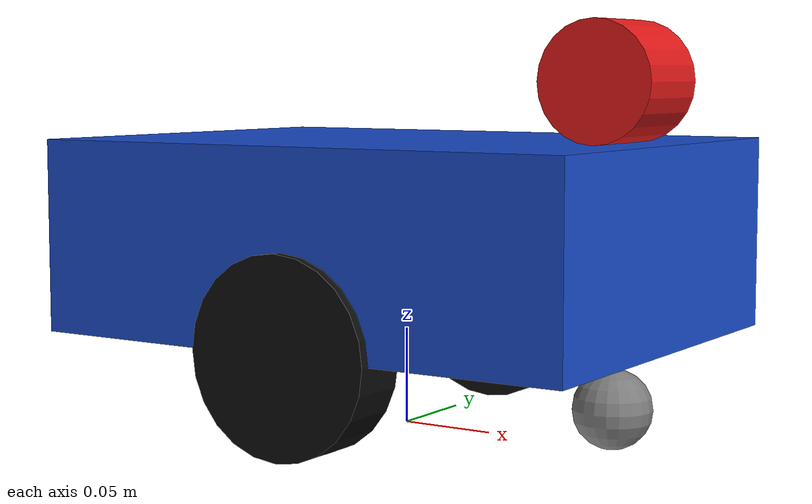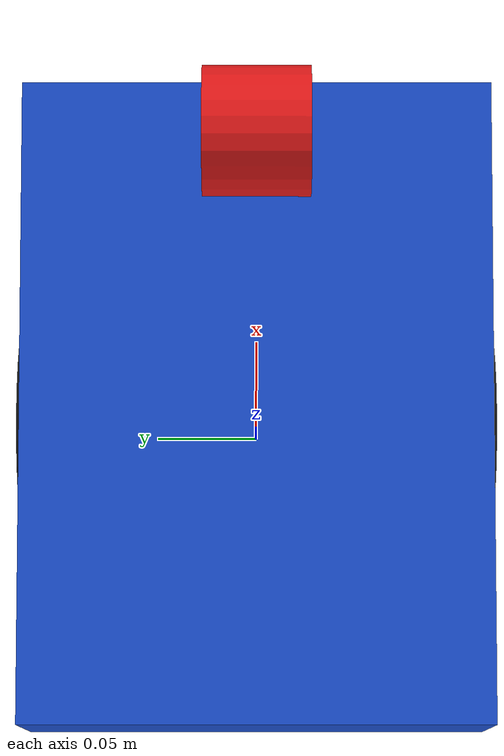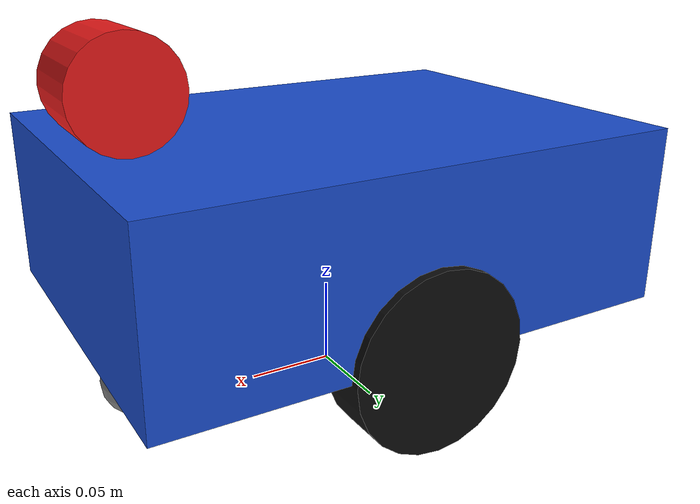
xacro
<?xml version="1.0"?>
<robot xmlns:xacro="http://www.ros.org/wiki/xacro" name="zizhuguihua">
  <xacro:property name="base_length" value="0.30"/>
  <xacro:property name="base_width" value="0.22"/>
  <xacro:property name="base_height" value="0.10"/>
  <xacro:property name="wheel_radius" value="0.05"/>
  <xacro:property name="wheel_width" value="0.03"/>
  <xacro:property name="wheel_sep" value="0.20"/>
  <xacro:property name="laser_radius" value="0.03"/>
  <xacro:property name="caster_radius" value="0.02"/>

  <link name="base_footprint"/>

  <joint name="base_footprint_joint" type="fixed">
    <parent link="base_footprint"/>
    <child link="base_link"/>
    <origin xyz="0 0 ${wheel_radius * 2.0}" rpy="0 0 0"/>
  </joint>

  <link name="base_link">
    <visual>
      <geometry>
        <box size="${base_length} ${base_width} ${base_height}"/>
      </geometry>
      <origin xyz="0 0 0" rpy="0 0 0"/>
      <material name="Blue">
        <color rgba="0.1 0.3 0.8 1.0"/>
      </material>
    </visual>
    <collision>
      <geometry>
        <box size="${base_length} ${base_width} ${base_height}"/>
      </geometry>
      <origin xyz="0 0 0" rpy="0 0 0"/>
    </collision>
    <inertial>
      <mass value="12.0"/>
      <origin xyz="0 0 0" rpy="0 0 0"/>
      <inertia ixx="0.12" ixy="0.0" ixz="0.0" iyy="0.18" iyz="0.0" izz="0.20"/>
    </inertial>
  </link>

  <link name="left_wheel_link">
    <visual>
      <geometry>
        <cylinder radius="${wheel_radius}" length="${wheel_width}"/>
      </geometry>
      <origin xyz="0 0 0" rpy="1.5708 0 0"/>
      <material name="Black">
        <color rgba="0.05 0.05 0.05 1.0"/>
      </material>
    </visual>
    <collision>
      <geometry>
        <cylinder radius="${wheel_radius}" length="${wheel_width}"/>
      </geometry>
      <origin xyz="0 0 0" rpy="1.5708 0 0"/>
    </collision>
    <inertial>
      <mass value="0.8"/>
      <origin xyz="0 0 0" rpy="0 0 0"/>
      <inertia ixx="0.002" ixy="0.0" ixz="0.0" iyy="0.002" iyz="0.0" izz="0.002"/>
    </inertial>
  </link>

  <link name="right_wheel_link">
    <visual>
      <geometry>
        <cylinder radius="${wheel_radius}" length="${wheel_width}"/>
      </geometry>
      <origin xyz="0 0 0" rpy="1.5708 0 0"/>
      <material name="Black">
        <color rgba="0.05 0.05 0.05 1.0"/>
      </material>
    </visual>
    <collision>
      <geometry>
        <cylinder radius="${wheel_radius}" length="${wheel_width}"/>
      </geometry>
      <origin xyz="0 0 0" rpy="1.5708 0 0"/>
    </collision>
    <inertial>
      <mass value="0.8"/>
      <origin xyz="0 0 0" rpy="0 0 0"/>
      <inertia ixx="0.002" ixy="0.0" ixz="0.0" iyy="0.002" iyz="0.0" izz="0.002"/>
    </inertial>
  </link>

  <joint name="left_wheel_joint" type="continuous">
    <parent link="base_link"/>
    <child link="left_wheel_link"/>
    <origin xyz="0 ${wheel_sep / 2.0} -${wheel_radius}" rpy="0 0 0"/>
    <axis xyz="0 1 0"/>
    <limit effort="200.0" velocity="20.0"/>
    <dynamics damping="0.2" friction="0.2"/>
  </joint>

  <joint name="right_wheel_joint" type="continuous">
    <parent link="base_link"/>
    <child link="right_wheel_link"/>
    <origin xyz="0 -${wheel_sep / 2.0} -${wheel_radius}" rpy="0 0 0"/>
    <axis xyz="0 1 0"/>
    <limit effort="200.0" velocity="20.0"/>
    <dynamics damping="0.2" friction="0.2"/>
  </joint>

  <link name="laser_link">
    <visual>
      <geometry>
        <cylinder radius="${laser_radius}" length="0.05"/>
      </geometry>
      <origin xyz="0 0 0" rpy="1.5708 0 0"/>
      <material name="Red">
        <color rgba="0.9 0.1 0.1 1.0"/>
      </material>
    </visual>
    <collision>
      <geometry>
        <cylinder radius="${laser_radius}" length="0.05"/>
      </geometry>
      <origin xyz="0 0 0" rpy="1.5708 0 0"/>
    </collision>
    <inertial>
      <mass value="0.1"/>
      <origin xyz="0 0 0" rpy="0 0 0"/>
      <inertia ixx="0.0001" ixy="0.0" ixz="0.0" iyy="0.0001" iyz="0.0" izz="0.0001"/>
    </inertial>
  </link>

  <joint name="laser_joint" type="fixed">
    <parent link="base_link"/>
    <child link="laser_link"/>
    <origin xyz="0.12 0 0.08" rpy="0 0 0"/>
  </joint>

  <link name="front_caster_link">
    <visual>
      <geometry>
        <sphere radius="${caster_radius}"/>
      </geometry>
      <material name="Gray">
        <color rgba="0.5 0.5 0.5 1.0"/>
      </material>
    </visual>
    <collision>
      <geometry>
        <sphere radius="${caster_radius}"/>
      </geometry>
    </collision>
    <inertial>
      <mass value="0.05"/>
      <origin xyz="0 0 0" rpy="0 0 0"/>
      <inertia ixx="0.00001" ixy="0.0" ixz="0.0" iyy="0.00001" iyz="0.0" izz="0.00001"/>
    </inertial>
  </link>

  <joint name="front_caster_joint" type="fixed">
    <parent link="base_link"/>
    <child link="front_caster_link"/>
    <origin xyz="0.12 0 -0.08" rpy="0 0 0"/>
  </joint>

  <link name="rear_caster_link">
    <visual>
      <geometry>
        <sphere radius="${caster_radius}"/>
      </geometry>
      <material name="Gray">
        <color rgba="0.5 0.5 0.5 1.0"/>
      </material>
    </visual>
    <collision>
      <geometry>
        <sphere radius="${caster_radius}"/>
      </geometry>
    </collision>
    <inertial>
      <mass value="0.05"/>
      <origin xyz="0 0 0" rpy="0 0 0"/>
      <inertia ixx="0.00001" ixy="0.0" ixz="0.0" iyy="0.00001" iyz="0.0" izz="0.00001"/>
    </inertial>
  </link>

  <joint name="rear_caster_joint" type="fixed">
    <parent link="base_link"/>
    <child link="rear_caster_link"/>
    <origin xyz="-0.12 0 -0.08" rpy="0 0 0"/>
  </joint>

  <gazebo reference="base_link">
    <material>Gazebo/Blue</material>
  </gazebo>

  <gazebo reference="left_wheel_link">
    <material>Gazebo/Black</material>
    <mu1>1.0</mu1>
    <mu2>1.0</mu2>
  </gazebo>

  <gazebo reference="right_wheel_link">
    <material>Gazebo/Black</material>
    <mu1>1.0</mu1>
    <mu2>1.0</mu2>
  </gazebo>

  <gazebo reference="laser_link">
    <material>Gazebo/Red</material>
    <sensor name="laser_sensor" type="ray">
      <pose>0 0 0 0 0 0</pose>
      <visualize>true</visualize>
      <update_rate>15</update_rate>
      <ray>
        <scan>
          <horizontal>
            <samples>360</samples>
            <resolution>1</resolution>
            <min_angle>-3.14159</min_angle>
            <max_angle>3.14159</max_angle>
          </horizontal>
        </scan>
        <range>
          <min>0.12</min>
          <max>6.0</max>
          <resolution>0.01</resolution>
        </range>
        <noise>
          <type>gaussian</type>
          <mean>0.0</mean>
          <stddev>0.01</stddev>
        </noise>
      </ray>
      <plugin name="gazebo_ros_laser" filename="libgazebo_ros_ray_sensor.so">
        <ros>
          <remapping>~/out:=scan</remapping>
        </ros>
        <output_type>sensor_msgs/LaserScan</output_type>
        <frame_name>laser_link</frame_name>
      </plugin>
    </sensor>
  </gazebo>

  <gazebo reference="front_caster_link">
    <material>Gazebo/Gray</material>
    <mu1>0.0</mu1>
    <mu2>0.0</mu2>
  </gazebo>

  <gazebo reference="rear_caster_link">
    <material>Gazebo/Gray</material>
    <mu1>0.0</mu1>
    <mu2>0.0</mu2>
  </gazebo>

  <gazebo>
    <plugin name="gazebo_ros_diff_drive" filename="libgazebo_ros_diff_drive.so">
      <ros>
        <remapping>cmd_vel:=cmd_vel</remapping>
        <remapping>odom:=odom</remapping>
      </ros>
      <update_rate>50</update_rate>
      <left_joint>left_wheel_joint</left_joint>
      <right_joint>right_wheel_joint</right_joint>
      <wheel_separation>${wheel_sep}</wheel_separation>
      <wheel_diameter>${wheel_radius * 2.0}</wheel_diameter>
      <wheel_torque>20</wheel_torque>
      <wheel_acceleration>10.0</wheel_acceleration>
      <command_topic>cmd_vel</command_topic>
      <odometry_topic>odom</odometry_topic>
      <odometry_frame>odom</odometry_frame>
      <robot_base_frame>base_footprint</robot_base_frame>
      <publish_tf>true</publish_tf>
      <publish_odom_tf>true</publish_odom_tf>
      <publish_wheel_tf>true</publish_wheel_tf>
      <publish_wheel_joint_state>true</publish_wheel_joint_state>
    </plugin>
  </gazebo>
</robot>
